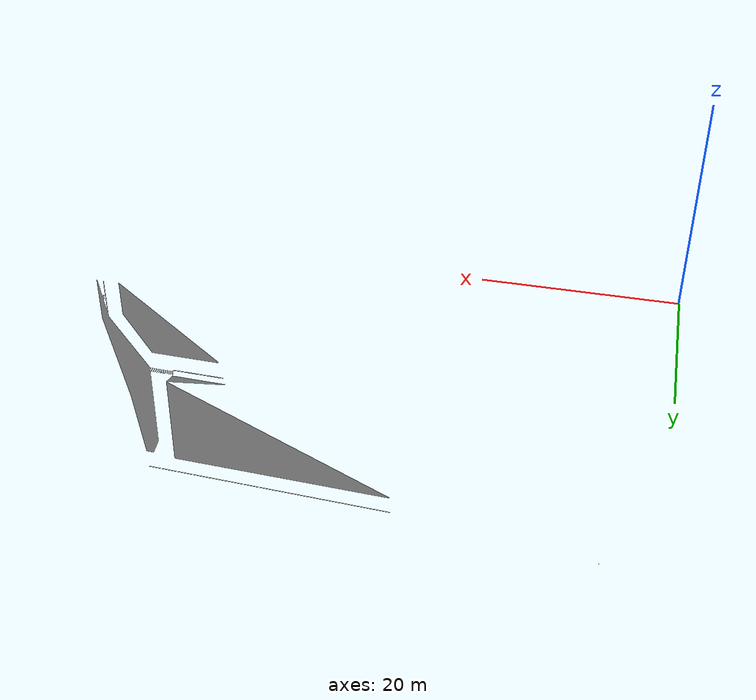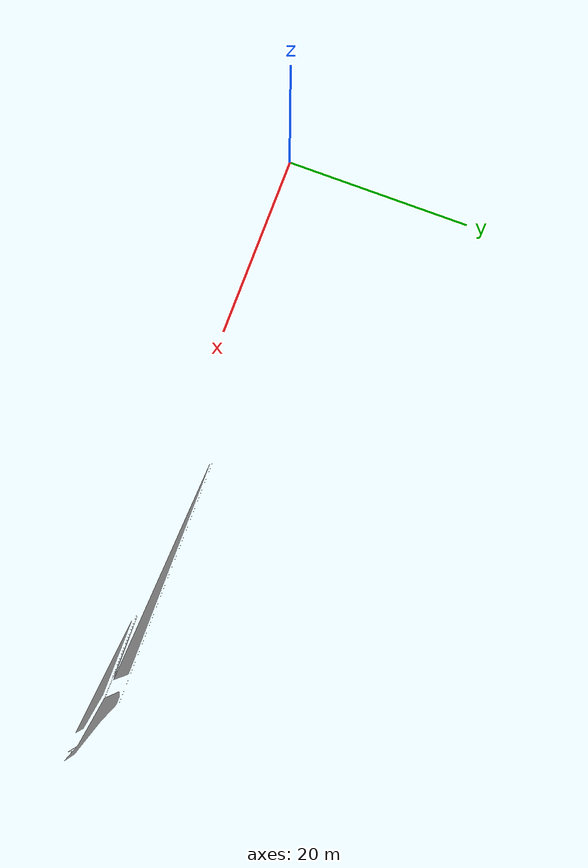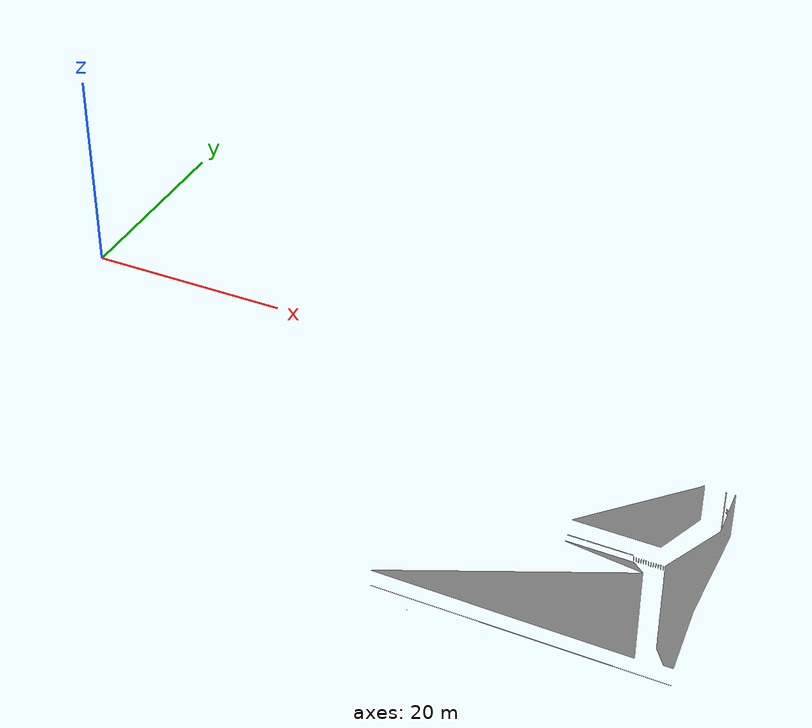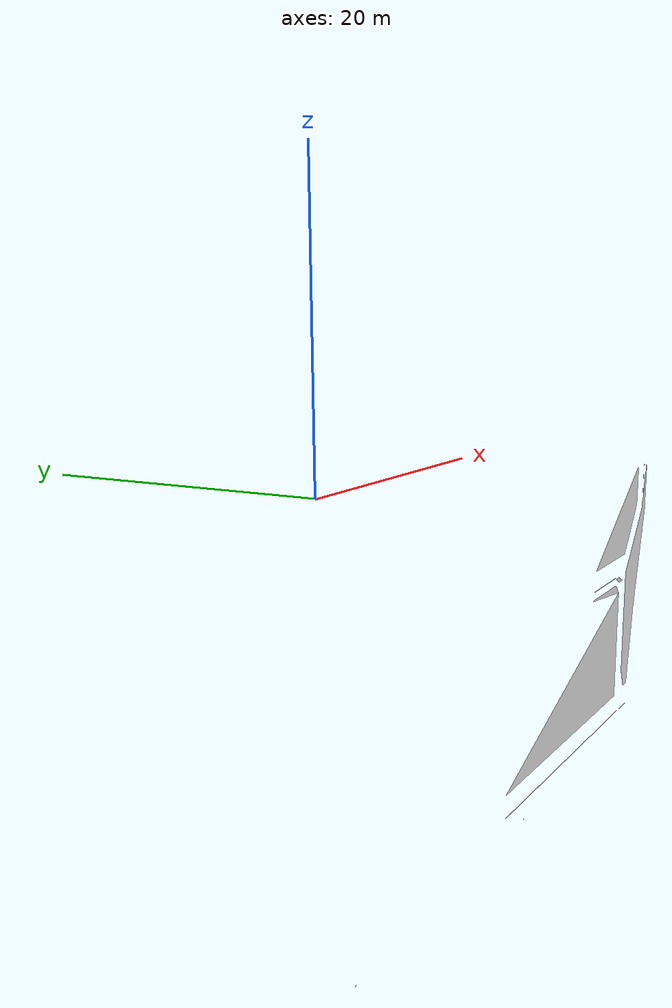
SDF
<?xml version="1.0" ?>
<sdf version="1.6">
  <model name="industry_yellow_lines">
    <static>true</static>
    <link name="link">
      <visual name="visual">
        <geometry>
          <mesh>
            <scale>1 1 1</scale>
            <uri>model://industry_yellow_lines/meshes/industry_yellow_lines.obj</uri>
          </mesh>
        </geometry>
      </visual>
    </link>
  </model>
</sdf>
